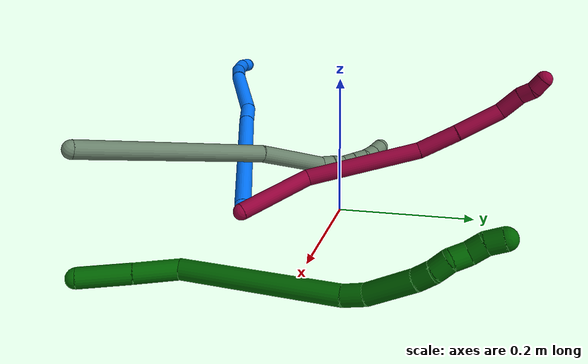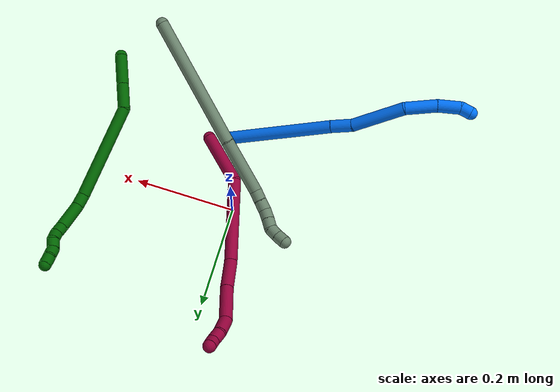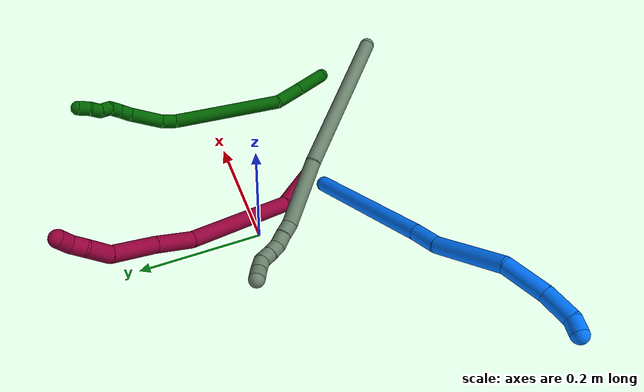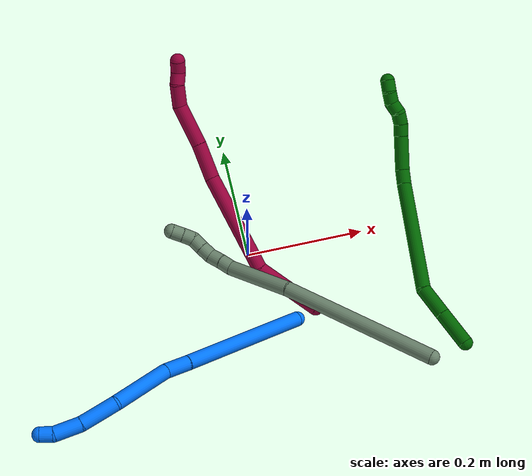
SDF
<sdf version="1.7">
 <world name="default">
  <model name="6">
   <static>0</static>
   <link name="6">
    <collision name="collision-cylinder-e_1_1_4">
     <pose>-0.024391 0.018764 -0.006123 -1.88622 -0.890467 1.1635</pose>
     <geometry><cylinder><radius>0.0125</radius><length>0.062753</length></cylinder></geometry>
     <surface>
      <friction><ode><mu>1.16</mu><mu2>1.16</mu2><slip1>0</slip1><slip2>0</slip2></ode></friction>
      <contact><ode><kp>1e+06</kp><kd>1</kd><max_vel>0</max_vel><min_depth>0.001</min_depth></ode></contact>
     </surface>
    </collision>
    <visual name="visual-cylinder-e_1_1_4">
     <pose>-0.024391 0.018764 -0.006123 -1.88622 -0.890467 1.1635</pose>
     <geometry><cylinder><radius>0.0125</radius><length>0.062753</length></cylinder></geometry>
     <material><ambient>0 0.392157 0.003922 1</ambient></material>
    </visual>
    <collision name="collision-cylinder-e_2_4_5">
     <pose>-0.069706 0.053082 -0.017394 -1.89043 -0.906475 1.18647</pose>
     <geometry><cylinder><radius>0.0125</radius><length>0.053152</length></cylinder></geometry>
     <surface>
      <friction><ode><mu>1.16</mu><mu2>1.16</mu2><slip1>0</slip1><slip2>0</slip2></ode></friction>
      <contact><ode><kp>1e+06</kp><kd>1</kd><max_vel>0</max_vel><min_depth>0.001</min_depth></ode></contact>
     </surface>
    </collision>
    <visual name="visual-cylinder-e_2_4_5">
     <pose>-0.069706 0.053082 -0.017394 -1.89043 -0.906475 1.18647</pose>
     <geometry><cylinder><radius>0.0125</radius><length>0.053152</length></cylinder></geometry>
     <material><ambient>0 0.392157 0.003922 1</ambient></material>
    </visual>
    <collision name="collision-cylinder-e_3_5_6">
     <pose>-0.161735 0.130472 0.004656 -1.15641 -0.811005 0.546313</pose>
     <geometry><cylinder><radius>0.0125</radius><length>0.196154</length></cylinder></geometry>
     <surface>
      <friction><ode><mu>1.16</mu><mu2>1.16</mu2><slip1>0</slip1><slip2>0</slip2></ode></friction>
      <contact><ode><kp>1e+06</kp><kd>1</kd><max_vel>0</max_vel><min_depth>0.001</min_depth></ode></contact>
     </surface>
    </collision>
    <visual name="visual-cylinder-e_3_5_6">
     <pose>-0.161735 0.130472 0.004656 -1.15641 -0.811005 0.546313</pose>
     <geometry><cylinder><radius>0.0125</radius><length>0.196154</length></cylinder></geometry>
     <material><ambient>0 0.392157 0.003922 1</ambient></material>
    </visual>
    <collision name="collision-cylinder-e_4_6_7">
     <pose>-0.244102 0.19819 0.03592 -0.96601 -1.00514 0.561294</pose>
     <geometry><cylinder><radius>0.0125</radius><length>0.026684</length></cylinder></geometry>
     <surface>
      <friction><ode><mu>1.16</mu><mu2>1.16</mu2><slip1>0</slip1><slip2>0</slip2></ode></friction>
      <contact><ode><kp>1e+06</kp><kd>1</kd><max_vel>0</max_vel><min_depth>0.001</min_depth></ode></contact>
     </surface>
    </collision>
    <visual name="visual-cylinder-e_4_6_7">
     <pose>-0.244102 0.19819 0.03592 -0.96601 -1.00514 0.561294</pose>
     <geometry><cylinder><radius>0.0125</radius><length>0.026684</length></cylinder></geometry>
     <material><ambient>0 0.392157 0.003922 1</ambient></material>
    </visual>
    <collision name="collision-cylinder-e_5_7_8">
     <pose>-0.282687 0.20993 0.050551 -0.506247 -1.15449 0.333779</pose>
     <geometry><cylinder><radius>0.0125</radius><length>0.059745</length></cylinder></geometry>
     <surface>
      <friction><ode><mu>1.16</mu><mu2>1.16</mu2><slip1>0</slip1><slip2>0</slip2></ode></friction>
      <contact><ode><kp>1e+06</kp><kd>1</kd><max_vel>0</max_vel><min_depth>0.001</min_depth></ode></contact>
     </surface>
    </collision>
    <visual name="visual-cylinder-e_5_7_8">
     <pose>-0.282687 0.20993 0.050551 -0.506247 -1.15449 0.333779</pose>
     <geometry><cylinder><radius>0.0125</radius><length>0.059745</length></cylinder></geometry>
     <material><ambient>0 0.392157 0.003922 1</ambient></material>
    </visual>
    <collision name="collision-cylinder-e_6_8_9">
     <pose>-0.320125 0.216475 0.06468 -0.190672 -1.22636 0.134375</pose>
     <geometry><cylinder><radius>0.0125</radius><length>0.021498</length></cylinder></geometry>
     <surface>
      <friction><ode><mu>1.16</mu><mu2>1.16</mu2><slip1>0</slip1><slip2>0</slip2></ode></friction>
      <contact><ode><kp>1e+06</kp><kd>1</kd><max_vel>0</max_vel><min_depth>0.001</min_depth></ode></contact>
     </surface>
    </collision>
    <visual name="visual-cylinder-e_6_8_9">
     <pose>-0.320125 0.216475 0.06468 -0.190672 -1.22636 0.134375</pose>
     <geometry><cylinder><radius>0.0125</radius><length>0.021498</length></cylinder></geometry>
     <material><ambient>0 0.392157 0.003922 1</ambient></material>
    </visual>
    <collision name="collision-cylinder-e_7_9_10">
     <pose>-0.340164 0.216906 0.06948 0.204966 -1.44413 -0.180662</pose>
     <geometry><cylinder><radius>0.0125</radius><length>0.020003</length></cylinder></geometry>
     <surface>
      <friction><ode><mu>1.16</mu><mu2>1.16</mu2><slip1>0</slip1><slip2>0</slip2></ode></friction>
      <contact><ode><kp>1e+06</kp><kd>1</kd><max_vel>0</max_vel><min_depth>0.001</min_depth></ode></contact>
     </surface>
    </collision>
    <visual name="visual-cylinder-e_7_9_10">
     <pose>-0.340164 0.216906 0.06948 0.204966 -1.44413 -0.180662</pose>
     <geometry><cylinder><radius>0.0125</radius><length>0.020003</length></cylinder></geometry>
     <material><ambient>0 0.392157 0.003922 1</ambient></material>
    </visual>
    <collision name="collision-cylinder-e_8_10_11">
     <pose>-0.359253 0.220193 0.068851 -2.05543 -1.15883 1.65137</pose>
     <geometry><cylinder><radius>0.0125</radius><length>0.020009</length></cylinder></geometry>
     <surface>
      <friction><ode><mu>1.16</mu><mu2>1.16</mu2><slip1>0</slip1><slip2>0</slip2></ode></friction>
      <contact><ode><kp>1e+06</kp><kd>1</kd><max_vel>0</max_vel><min_depth>0.001</min_depth></ode></contact>
     </surface>
    </collision>
    <visual name="visual-cylinder-e_8_10_11">
     <pose>-0.359253 0.220193 0.068851 -2.05543 -1.15883 1.65137</pose>
     <geometry><cylinder><radius>0.0125</radius><length>0.020009</length></cylinder></geometry>
     <material><ambient>0 0.392157 0.003922 1</ambient></material>
    </visual>
    <collision name="collision-cylinder-e_9_11_12">
     <pose>-0.378286 0.224295 0.068527 -0.346272 -1.40605 0.294282</pose>
     <geometry><cylinder><radius>0.0125</radius><length>0.02</length></cylinder></geometry>
     <surface>
      <friction><ode><mu>1.16</mu><mu2>1.16</mu2><slip1>0</slip1><slip2>0</slip2></ode></friction>
      <contact><ode><kp>1e+06</kp><kd>1</kd><max_vel>0</max_vel><min_depth>0.001</min_depth></ode></contact>
     </surface>
    </collision>
    <visual name="visual-cylinder-e_9_11_12">
     <pose>-0.378286 0.224295 0.068527 -0.346272 -1.40605 0.294282</pose>
     <geometry><cylinder><radius>0.0125</radius><length>0.02</length></cylinder></geometry>
     <material><ambient>0 0.392157 0.003922 1</ambient></material>
    </visual>
    <collision name="collision-cylinder-e_10_12_2">
     <pose>-0.397271 0.228094 0.072581 -0.911831 -1.14822 0.614259</pose>
     <geometry><cylinder><radius>0.0125</radius><length>0.020002</length></cylinder></geometry>
     <surface>
      <friction><ode><mu>1.16</mu><mu2>1.16</mu2><slip1>0</slip1><slip2>0</slip2></ode></friction>
      <contact><ode><kp>1e+06</kp><kd>1</kd><max_vel>0</max_vel><min_depth>0.001</min_depth></ode></contact>
     </surface>
    </collision>
    <visual name="visual-cylinder-e_10_12_2">
     <pose>-0.397271 0.228094 0.072581 -0.911831 -1.14822 0.614259</pose>
     <geometry><cylinder><radius>0.0125</radius><length>0.020002</length></cylinder></geometry>
     <material><ambient>0 0.392157 0.003922 1</ambient></material>
    </visual>
    <collision name="collision-sphere-2">
     <pose>-0.406393 0.231337 0.075093 0 -0 0</pose>
     <geometry><sphere><radius>0.0125</radius></sphere></geometry>
     <surface>
      <friction><ode><mu>1.16</mu><mu2>1.16</mu2><slip1>0</slip1><slip2>0</slip2></ode></friction>
      <contact><ode><kp>1e+06</kp><kd>1</kd><max_vel>0</max_vel><min_depth>0.001</min_depth></ode></contact>
     </surface>
    </collision>
    <visual name="visual-sphere-2">
     <pose>-0.406393 0.231337 0.075093 0 -0 0</pose>
     <geometry><sphere><radius>0.0125</radius></sphere></geometry>
     <material><ambient>0 0.392157 0.003922 1</ambient></material>
    </visual>
    <collision name="collision-sphere-12">
     <pose>-0.38815 0.224851 0.07007 0 -0 0</pose>
     <geometry><sphere><radius>0.0125</radius></sphere></geometry>
     <surface>
      <friction><ode><mu>1.16</mu><mu2>1.16</mu2><slip1>0</slip1><slip2>0</slip2></ode></friction>
      <contact><ode><kp>1e+06</kp><kd>1</kd><max_vel>0</max_vel><min_depth>0.001</min_depth></ode></contact>
     </surface>
    </collision>
    <visual name="visual-sphere-12">
     <pose>-0.38815 0.224851 0.07007 0 -0 0</pose>
     <geometry><sphere><radius>0.0125</radius></sphere></geometry>
     <material><ambient>0 0.392157 0.003922 1</ambient></material>
    </visual>
    <collision name="collision-sphere-11">
     <pose>-0.368421 0.223738 0.066985 0 -0 0</pose>
     <geometry><sphere><radius>0.0125</radius></sphere></geometry>
     <surface>
      <friction><ode><mu>1.16</mu><mu2>1.16</mu2><slip1>0</slip1><slip2>0</slip2></ode></friction>
      <contact><ode><kp>1e+06</kp><kd>1</kd><max_vel>0</max_vel><min_depth>0.001</min_depth></ode></contact>
     </surface>
    </collision>
    <visual name="visual-sphere-11">
     <pose>-0.368421 0.223738 0.066985 0 -0 0</pose>
     <geometry><sphere><radius>0.0125</radius></sphere></geometry>
     <material><ambient>0 0.392157 0.003922 1</ambient></material>
    </visual>
    <collision name="collision-sphere-10">
     <pose>-0.350086 0.216649 0.070717 0 -0 0</pose>
     <geometry><sphere><radius>0.0125</radius></sphere></geometry>
     <surface>
      <friction><ode><mu>1.16</mu><mu2>1.16</mu2><slip1>0</slip1><slip2>0</slip2></ode></friction>
      <contact><ode><kp>1e+06</kp><kd>1</kd><max_vel>0</max_vel><min_depth>0.001</min_depth></ode></contact>
     </surface>
    </collision>
    <visual name="visual-sphere-10">
     <pose>-0.350086 0.216649 0.070717 0 -0 0</pose>
     <geometry><sphere><radius>0.0125</radius></sphere></geometry>
     <material><ambient>0 0.392157 0.003922 1</ambient></material>
    </visual>
    <collision name="collision-sphere-9">
     <pose>-0.330243 0.217163 0.068243 0 -0 0</pose>
     <geometry><sphere><radius>0.0125</radius></sphere></geometry>
     <surface>
      <friction><ode><mu>1.16</mu><mu2>1.16</mu2><slip1>0</slip1><slip2>0</slip2></ode></friction>
      <contact><ode><kp>1e+06</kp><kd>1</kd><max_vel>0</max_vel><min_depth>0.001</min_depth></ode></contact>
     </surface>
    </collision>
    <visual name="visual-sphere-9">
     <pose>-0.330243 0.217163 0.068243 0 -0 0</pose>
     <geometry><sphere><radius>0.0125</radius></sphere></geometry>
     <material><ambient>0 0.392157 0.003922 1</ambient></material>
    </visual>
    <collision name="collision-sphere-4">
     <pose>-0.048782 0.037527 -0.012246 0 -0 0</pose>
     <geometry><sphere><radius>0.0125</radius></sphere></geometry>
     <surface>
      <friction><ode><mu>1.16</mu><mu2>1.16</mu2><slip1>0</slip1><slip2>0</slip2></ode></friction>
      <contact><ode><kp>1e+06</kp><kd>1</kd><max_vel>0</max_vel><min_depth>0.001</min_depth></ode></contact>
     </surface>
    </collision>
    <visual name="visual-sphere-4">
     <pose>-0.048782 0.037527 -0.012246 0 -0 0</pose>
     <geometry><sphere><radius>0.0125</radius></sphere></geometry>
     <material><ambient>0 0.392157 0.003922 1</ambient></material>
    </visual>
    <collision name="collision-sphere-1">
     <geometry><sphere><radius>0.0125</radius></sphere></geometry>
     <surface>
      <friction><ode><mu>1.16</mu><mu2>1.16</mu2><slip1>0</slip1><slip2>0</slip2></ode></friction>
      <contact><ode><kp>1e+06</kp><kd>1</kd><max_vel>0</max_vel><min_depth>0.001</min_depth></ode></contact>
     </surface>
    </collision>
    <visual name="visual-sphere-1">
     <geometry><sphere><radius>0.0125</radius></sphere></geometry>
     <material><ambient>0 0.392157 0.003922 1</ambient></material>
    </visual>
    <collision name="collision-sphere-8">
     <pose>-0.310008 0.215787 0.061116 0 -0 0</pose>
     <geometry><sphere><radius>0.0125</radius></sphere></geometry>
     <surface>
      <friction><ode><mu>1.16</mu><mu2>1.16</mu2><slip1>0</slip1><slip2>0</slip2></ode></friction>
      <contact><ode><kp>1e+06</kp><kd>1</kd><max_vel>0</max_vel><min_depth>0.001</min_depth></ode></contact>
     </surface>
    </collision>
    <visual name="visual-sphere-8">
     <pose>-0.310008 0.215787 0.061116 0 -0 0</pose>
     <geometry><sphere><radius>0.0125</radius></sphere></geometry>
     <material><ambient>0 0.392157 0.003922 1</ambient></material>
    </visual>
    <collision name="collision-sphere-5">
     <pose>-0.090631 0.068637 -0.022543 0 -0 0</pose>
     <geometry><sphere><radius>0.0125</radius></sphere></geometry>
     <surface>
      <friction><ode><mu>1.16</mu><mu2>1.16</mu2><slip1>0</slip1><slip2>0</slip2></ode></friction>
      <contact><ode><kp>1e+06</kp><kd>1</kd><max_vel>0</max_vel><min_depth>0.001</min_depth></ode></contact>
     </surface>
    </collision>
    <visual name="visual-sphere-5">
     <pose>-0.090631 0.068637 -0.022543 0 -0 0</pose>
     <geometry><sphere><radius>0.0125</radius></sphere></geometry>
     <material><ambient>0 0.392157 0.003922 1</ambient></material>
    </visual>
    <collision name="collision-sphere-6">
     <pose>-0.232839 0.192307 0.031855 0 -0 0</pose>
     <geometry><sphere><radius>0.0125</radius></sphere></geometry>
     <surface>
      <friction><ode><mu>1.16</mu><mu2>1.16</mu2><slip1>0</slip1><slip2>0</slip2></ode></friction>
      <contact><ode><kp>1e+06</kp><kd>1</kd><max_vel>0</max_vel><min_depth>0.001</min_depth></ode></contact>
     </surface>
    </collision>
    <visual name="visual-sphere-6">
     <pose>-0.232839 0.192307 0.031855 0 -0 0</pose>
     <geometry><sphere><radius>0.0125</radius></sphere></geometry>
     <material><ambient>0 0.392157 0.003922 1</ambient></material>
    </visual>
    <collision name="collision-sphere-7">
     <pose>-0.255366 0.204072 0.039986 0 -0 0</pose>
     <geometry><sphere><radius>0.0125</radius></sphere></geometry>
     <surface>
      <friction><ode><mu>1.16</mu><mu2>1.16</mu2><slip1>0</slip1><slip2>0</slip2></ode></friction>
      <contact><ode><kp>1e+06</kp><kd>1</kd><max_vel>0</max_vel><min_depth>0.001</min_depth></ode></contact>
     </surface>
    </collision>
    <visual name="visual-sphere-7">
     <pose>-0.255366 0.204072 0.039986 0 -0 0</pose>
     <geometry><sphere><radius>0.0125</radius></sphere></geometry>
     <material><ambient>0 0.392157 0.003922 1</ambient></material>
    </visual>
    <inertial>
     <pose>-0.1935 0.139738 0.021127 0 -0 0</pose>
     <mass>0.5</mass>
     <inertia>
      <ixx>0.000616</ixx>
      <ixy>0</ixy>
      <ixz>0</ixz>
      <iyy>0.000761</iyy>
      <iyz>0</iyz>
      <izz>9.5e-05</izz>
     </inertia>
    </inertial>
   </link>
   <pose>0.318798 -0.238926 0.011494 -1.46492 0.680348 -1.31483</pose>
  </model>
  <model name="8">
   <static>0</static>
   <link name="8">
    <collision name="collision-cylinder-e_1_1_4">
     <pose>-0.039173 0.039935 0.013405 -1.24694 -0.749112 0.551045</pose>
     <geometry><cylinder><radius>0.0125</radius><length>0.115048</length></cylinder></geometry>
     <surface>
      <friction><ode><mu>1.16</mu><mu2>1.16</mu2><slip1>0</slip1><slip2>0</slip2></ode></friction>
      <contact><ode><kp>1e+06</kp><kd>1</kd><max_vel>0</max_vel><min_depth>0.001</min_depth></ode></contact>
     </surface>
    </collision>
    <visual name="visual-cylinder-e_1_1_4">
     <pose>-0.039173 0.039935 0.013405 -1.24694 -0.749112 0.551045</pose>
     <geometry><cylinder><radius>0.0125</radius><length>0.115048</length></cylinder></geometry>
     <material><ambient>0.584314 0 0.227451 1</ambient></material>
    </visual>
    <collision name="collision-cylinder-e_2_4_5">
     <pose>-0.108828 0.141411 0.079789 -0.860026 -0.359094 0.166104</pose>
     <geometry><cylinder><radius>0.0125</radius><length>0.173472</length></cylinder></geometry>
     <surface>
      <friction><ode><mu>1.16</mu><mu2>1.16</mu2><slip1>0</slip1><slip2>0</slip2></ode></friction>
      <contact><ode><kp>1e+06</kp><kd>1</kd><max_vel>0</max_vel><min_depth>0.001</min_depth></ode></contact>
     </surface>
    </collision>
    <visual name="visual-cylinder-e_2_4_5">
     <pose>-0.108828 0.141411 0.079789 -0.860026 -0.359094 0.166104</pose>
     <geometry><cylinder><radius>0.0125</radius><length>0.173472</length></cylinder></geometry>
     <material><ambient>0.584314 0 0.227451 1</ambient></material>
    </visual>
    <collision name="collision-cylinder-e_3_5_6">
     <pose>-0.152857 0.219016 0.155325 -0.618829 -0.45499 0.147745</pose>
     <geometry><cylinder><radius>0.0125</radius><length>0.061658</length></cylinder></geometry>
     <surface>
      <friction><ode><mu>1.16</mu><mu2>1.16</mu2><slip1>0</slip1><slip2>0</slip2></ode></friction>
      <contact><ode><kp>1e+06</kp><kd>1</kd><max_vel>0</max_vel><min_depth>0.001</min_depth></ode></contact>
     </surface>
    </collision>
    <visual name="visual-cylinder-e_3_5_6">
     <pose>-0.152857 0.219016 0.155325 -0.618829 -0.45499 0.147745</pose>
     <geometry><cylinder><radius>0.0125</radius><length>0.061658</length></cylinder></geometry>
     <material><ambient>0.584314 0 0.227451 1</ambient></material>
    </visual>
    <collision name="collision-cylinder-e_4_6_7">
     <pose>-0.184556 0.254581 0.201838 -0.683246 -0.531245 0.192863</pose>
     <geometry><cylinder><radius>0.0125</radius><length>0.071656</length></cylinder></geometry>
     <surface>
      <friction><ode><mu>1.16</mu><mu2>1.16</mu2><slip1>0</slip1><slip2>0</slip2></ode></friction>
      <contact><ode><kp>1e+06</kp><kd>1</kd><max_vel>0</max_vel><min_depth>0.001</min_depth></ode></contact>
     </surface>
    </collision>
    <visual name="visual-cylinder-e_4_6_7">
     <pose>-0.184556 0.254581 0.201838 -0.683246 -0.531245 0.192863</pose>
     <geometry><cylinder><radius>0.0125</radius><length>0.071656</length></cylinder></geometry>
     <material><ambient>0.584314 0 0.227451 1</ambient></material>
    </visual>
    <collision name="collision-cylinder-e_5_7_8">
     <pose>-0.210996 0.277533 0.241866 -0.211523 -0.467065 0.050493</pose>
     <geometry><cylinder><radius>0.0125</radius><length>0.03682</length></cylinder></geometry>
     <surface>
      <friction><ode><mu>1.16</mu><mu2>1.16</mu2><slip1>0</slip1><slip2>0</slip2></ode></friction>
      <contact><ode><kp>1e+06</kp><kd>1</kd><max_vel>0</max_vel><min_depth>0.001</min_depth></ode></contact>
     </surface>
    </collision>
    <visual name="visual-cylinder-e_5_7_8">
     <pose>-0.210996 0.277533 0.241866 -0.211523 -0.467065 0.050493</pose>
     <geometry><cylinder><radius>0.0125</radius><length>0.03682</length></cylinder></geometry>
     <material><ambient>0.584314 0 0.227451 1</ambient></material>
    </visual>
    <collision name="collision-cylinder-e_6_8_9">
     <pose>-0.22079 0.283798 0.268088 -0.270364 -0.141908 0.019333</pose>
     <geometry><cylinder><radius>0.0125</radius><length>0.02128</length></cylinder></geometry>
     <surface>
      <friction><ode><mu>1.16</mu><mu2>1.16</mu2><slip1>0</slip1><slip2>0</slip2></ode></friction>
      <contact><ode><kp>1e+06</kp><kd>1</kd><max_vel>0</max_vel><min_depth>0.001</min_depth></ode></contact>
     </surface>
    </collision>
    <visual name="visual-cylinder-e_6_8_9">
     <pose>-0.22079 0.283798 0.268088 -0.270364 -0.141908 0.019333</pose>
     <geometry><cylinder><radius>0.0125</radius><length>0.02128</length></cylinder></geometry>
     <material><ambient>0.584314 0 0.227451 1</ambient></material>
    </visual>
    <collision name="collision-cylinder-e_7_9_2">
     <pose>-0.227214 0.286962 0.286976 -0.040126 -0.512482 0.010514</pose>
     <geometry><cylinder><radius>0.0125</radius><length>0.020065</length></cylinder></geometry>
     <surface>
      <friction><ode><mu>1.16</mu><mu2>1.16</mu2><slip1>0</slip1><slip2>0</slip2></ode></friction>
      <contact><ode><kp>1e+06</kp><kd>1</kd><max_vel>0</max_vel><min_depth>0.001</min_depth></ode></contact>
     </surface>
    </collision>
    <visual name="visual-cylinder-e_7_9_2">
     <pose>-0.227214 0.286962 0.286976 -0.040126 -0.512482 0.010514</pose>
     <geometry><cylinder><radius>0.0125</radius><length>0.020065</length></cylinder></geometry>
     <material><ambient>0.584314 0 0.227451 1</ambient></material>
    </visual>
    <collision name="collision-sphere-2">
     <pose>-0.232134 0.287312 0.295712 0 -0 0</pose>
     <geometry><sphere><radius>0.0125</radius></sphere></geometry>
     <surface>
      <friction><ode><mu>1.16</mu><mu2>1.16</mu2><slip1>0</slip1><slip2>0</slip2></ode></friction>
      <contact><ode><kp>1e+06</kp><kd>1</kd><max_vel>0</max_vel><min_depth>0.001</min_depth></ode></contact>
     </surface>
    </collision>
    <visual name="visual-sphere-2">
     <pose>-0.232134 0.287312 0.295712 0 -0 0</pose>
     <geometry><sphere><radius>0.0125</radius></sphere></geometry>
     <material><ambient>0.584314 0 0.227451 1</ambient></material>
    </visual>
    <collision name="collision-sphere-9">
     <pose>-0.222295 0.286611 0.278239 0 -0 0</pose>
     <geometry><sphere><radius>0.0125</radius></sphere></geometry>
     <surface>
      <friction><ode><mu>1.16</mu><mu2>1.16</mu2><slip1>0</slip1><slip2>0</slip2></ode></friction>
      <contact><ode><kp>1e+06</kp><kd>1</kd><max_vel>0</max_vel><min_depth>0.001</min_depth></ode></contact>
     </surface>
    </collision>
    <visual name="visual-sphere-9">
     <pose>-0.222295 0.286611 0.278239 0 -0 0</pose>
     <geometry><sphere><radius>0.0125</radius></sphere></geometry>
     <material><ambient>0.584314 0 0.227451 1</ambient></material>
    </visual>
    <collision name="collision-sphere-4">
     <pose>-0.078347 0.07987 0.02681 0 -0 0</pose>
     <geometry><sphere><radius>0.0125</radius></sphere></geometry>
     <surface>
      <friction><ode><mu>1.16</mu><mu2>1.16</mu2><slip1>0</slip1><slip2>0</slip2></ode></friction>
      <contact><ode><kp>1e+06</kp><kd>1</kd><max_vel>0</max_vel><min_depth>0.001</min_depth></ode></contact>
     </surface>
    </collision>
    <visual name="visual-sphere-4">
     <pose>-0.078347 0.07987 0.02681 0 -0 0</pose>
     <geometry><sphere><radius>0.0125</radius></sphere></geometry>
     <material><ambient>0.584314 0 0.227451 1</ambient></material>
    </visual>
    <collision name="collision-sphere-1">
     <geometry><sphere><radius>0.0125</radius></sphere></geometry>
     <surface>
      <friction><ode><mu>1.16</mu><mu2>1.16</mu2><slip1>0</slip1><slip2>0</slip2></ode></friction>
      <contact><ode><kp>1e+06</kp><kd>1</kd><max_vel>0</max_vel><min_depth>0.001</min_depth></ode></contact>
     </surface>
    </collision>
    <visual name="visual-sphere-1">
     <geometry><sphere><radius>0.0125</radius></sphere></geometry>
     <material><ambient>0.584314 0 0.227451 1</ambient></material>
    </visual>
    <collision name="collision-sphere-8">
     <pose>-0.219285 0.280985 0.257938 0 -0 0</pose>
     <geometry><sphere><radius>0.0125</radius></sphere></geometry>
     <surface>
      <friction><ode><mu>1.16</mu><mu2>1.16</mu2><slip1>0</slip1><slip2>0</slip2></ode></friction>
      <contact><ode><kp>1e+06</kp><kd>1</kd><max_vel>0</max_vel><min_depth>0.001</min_depth></ode></contact>
     </surface>
    </collision>
    <visual name="visual-sphere-8">
     <pose>-0.219285 0.280985 0.257938 0 -0 0</pose>
     <geometry><sphere><radius>0.0125</radius></sphere></geometry>
     <material><ambient>0.584314 0 0.227451 1</ambient></material>
    </visual>
    <collision name="collision-sphere-5">
     <pose>-0.139309 0.202952 0.132768 0 -0 0</pose>
     <geometry><sphere><radius>0.0125</radius></sphere></geometry>
     <surface>
      <friction><ode><mu>1.16</mu><mu2>1.16</mu2><slip1>0</slip1><slip2>0</slip2></ode></friction>
      <contact><ode><kp>1e+06</kp><kd>1</kd><max_vel>0</max_vel><min_depth>0.001</min_depth></ode></contact>
     </surface>
    </collision>
    <visual name="visual-sphere-5">
     <pose>-0.139309 0.202952 0.132768 0 -0 0</pose>
     <geometry><sphere><radius>0.0125</radius></sphere></geometry>
     <material><ambient>0.584314 0 0.227451 1</ambient></material>
    </visual>
    <collision name="collision-sphere-6">
     <pose>-0.166405 0.23508 0.177882 0 -0 0</pose>
     <geometry><sphere><radius>0.0125</radius></sphere></geometry>
     <surface>
      <friction><ode><mu>1.16</mu><mu2>1.16</mu2><slip1>0</slip1><slip2>0</slip2></ode></friction>
      <contact><ode><kp>1e+06</kp><kd>1</kd><max_vel>0</max_vel><min_depth>0.001</min_depth></ode></contact>
     </surface>
    </collision>
    <visual name="visual-sphere-6">
     <pose>-0.166405 0.23508 0.177882 0 -0 0</pose>
     <geometry><sphere><radius>0.0125</radius></sphere></geometry>
     <material><ambient>0.584314 0 0.227451 1</ambient></material>
    </visual>
    <collision name="collision-sphere-7">
     <pose>-0.202706 0.274082 0.225794 0 -0 0</pose>
     <geometry><sphere><radius>0.0125</radius></sphere></geometry>
     <surface>
      <friction><ode><mu>1.16</mu><mu2>1.16</mu2><slip1>0</slip1><slip2>0</slip2></ode></friction>
      <contact><ode><kp>1e+06</kp><kd>1</kd><max_vel>0</max_vel><min_depth>0.001</min_depth></ode></contact>
     </surface>
    </collision>
    <visual name="visual-sphere-7">
     <pose>-0.202706 0.274082 0.225794 0 -0 0</pose>
     <geometry><sphere><radius>0.0125</radius></sphere></geometry>
     <material><ambient>0.584314 0 0.227451 1</ambient></material>
    </visual>
    <inertial>
     <pose>-0.126123 0.165775 0.119584 0 -0 0</pose>
     <mass>0.5</mass>
     <inertia>
      <ixx>0.000655</ixx>
      <ixy>0</ixy>
      <ixz>0</ixz>
      <iyy>0.000588</iyy>
      <iyz>0</iyz>
      <izz>-0.000138</izz>
     </inertia>
    </inertial>
   </link>
   <pose>0.08893 -0.12521 0.017821 -0.742769 0.801514 -0.004313</pose>
  </model>
  <model name="14">
   <static>0</static>
   <link name="14">
    <collision name="collision-cylinder-e_1_1_4">
     <pose>0.069499 -0.084891 0.016946 1.37377 0.67647 0.561702</pose>
     <geometry><cylinder><radius>0.0125</radius><length>0.222024</length></cylinder></geometry>
     <surface>
      <friction><ode><mu>1.16</mu><mu2>1.16</mu2><slip1>0</slip1><slip2>0</slip2></ode></friction>
      <contact><ode><kp>1e+06</kp><kd>1</kd><max_vel>0</max_vel><min_depth>0.001</min_depth></ode></contact>
     </surface>
    </collision>
    <visual name="visual-cylinder-e_1_1_4">
     <pose>0.069499 -0.084891 0.016946 1.37377 0.67647 0.561702</pose>
     <geometry><cylinder><radius>0.0125</radius><length>0.222024</length></cylinder></geometry>
     <material><ambient>0 0.462745 1 1</ambient></material>
    </visual>
    <collision name="collision-cylinder-e_2_4_5">
     <pose>0.152312 -0.186009 0.035956 1.44425 0.683234 0.607021</pose>
     <geometry><cylinder><radius>0.0125</radius><length>0.042183</length></cylinder></geometry>
     <surface>
      <friction><ode><mu>1.16</mu><mu2>1.16</mu2><slip1>0</slip1><slip2>0</slip2></ode></friction>
      <contact><ode><kp>1e+06</kp><kd>1</kd><max_vel>0</max_vel><min_depth>0.001</min_depth></ode></contact>
     </surface>
    </collision>
    <visual name="visual-cylinder-e_2_4_5">
     <pose>0.152312 -0.186009 0.035956 1.44425 0.683234 0.607021</pose>
     <geometry><cylinder><radius>0.0125</radius><length>0.042183</length></cylinder></geometry>
     <material><ambient>0 0.462745 1 1</ambient></material>
    </visual>
    <collision name="collision-cylinder-e_3_5_6">
     <pose>0.201933 -0.238267 0.054895 1.13281 0.73966 0.4834</pose>
     <geometry><cylinder><radius>0.0125</radius><length>0.107725</length></cylinder></geometry>
     <surface>
      <friction><ode><mu>1.16</mu><mu2>1.16</mu2><slip1>0</slip1><slip2>0</slip2></ode></friction>
      <contact><ode><kp>1e+06</kp><kd>1</kd><max_vel>0</max_vel><min_depth>0.001</min_depth></ode></contact>
     </surface>
    </collision>
    <visual name="visual-cylinder-e_3_5_6">
     <pose>0.201933 -0.238267 0.054895 1.13281 0.73966 0.4834</pose>
     <geometry><cylinder><radius>0.0125</radius><length>0.107725</length></cylinder></geometry>
     <material><ambient>0 0.462745 1 1</ambient></material>
    </visual>
    <collision name="collision-cylinder-e_4_6_7">
     <pose>0.263427 -0.292664 0.071214 1.60112 0.940617 0.965334</pose>
     <geometry><cylinder><radius>0.0125</radius><length>0.062354</length></cylinder></geometry>
     <surface>
      <friction><ode><mu>1.16</mu><mu2>1.16</mu2><slip1>0</slip1><slip2>0</slip2></ode></friction>
      <contact><ode><kp>1e+06</kp><kd>1</kd><max_vel>0</max_vel><min_depth>0.001</min_depth></ode></contact>
     </surface>
    </collision>
    <visual name="visual-cylinder-e_4_6_7">
     <pose>0.263427 -0.292664 0.071214 1.60112 0.940617 0.965334</pose>
     <geometry><cylinder><radius>0.0125</radius><length>0.062354</length></cylinder></geometry>
     <material><ambient>0 0.462745 1 1</ambient></material>
    </visual>
    <collision name="collision-cylinder-e_5_7_8">
     <pose>0.304397 -0.326487 0.067447 1.77548 0.785151 0.941414</pose>
     <geometry><cylinder><radius>0.0125</radius><length>0.044647</length></cylinder></geometry>
     <surface>
      <friction><ode><mu>1.16</mu><mu2>1.16</mu2><slip1>0</slip1><slip2>0</slip2></ode></friction>
      <contact><ode><kp>1e+06</kp><kd>1</kd><max_vel>0</max_vel><min_depth>0.001</min_depth></ode></contact>
     </surface>
    </collision>
    <visual name="visual-cylinder-e_5_7_8">
     <pose>0.304397 -0.326487 0.067447 1.77548 0.785151 0.941414</pose>
     <geometry><cylinder><radius>0.0125</radius><length>0.044647</length></cylinder></geometry>
     <material><ambient>0 0.462745 1 1</ambient></material>
    </visual>
    <collision name="collision-cylinder-e_6_8_2">
     <pose>0.32518 -0.349903 0.059482 2.1095 0.494809 0.837727</pose>
     <geometry><cylinder><radius>0.0125</radius><length>0.021066</length></cylinder></geometry>
     <surface>
      <friction><ode><mu>1.16</mu><mu2>1.16</mu2><slip1>0</slip1><slip2>0</slip2></ode></friction>
      <contact><ode><kp>1e+06</kp><kd>1</kd><max_vel>0</max_vel><min_depth>0.001</min_depth></ode></contact>
     </surface>
    </collision>
    <visual name="visual-cylinder-e_6_8_2">
     <pose>0.32518 -0.349903 0.059482 2.1095 0.494809 0.837727</pose>
     <geometry><cylinder><radius>0.0125</radius><length>0.021066</length></cylinder></geometry>
     <material><ambient>0 0.462745 1 1</ambient></material>
    </visual>
    <collision name="collision-sphere-2">
     <pose>0.330181 -0.35786 0.054727 0 -0 0</pose>
     <geometry><sphere><radius>0.0125</radius></sphere></geometry>
     <surface>
      <friction><ode><mu>1.16</mu><mu2>1.16</mu2><slip1>0</slip1><slip2>0</slip2></ode></friction>
      <contact><ode><kp>1e+06</kp><kd>1</kd><max_vel>0</max_vel><min_depth>0.001</min_depth></ode></contact>
     </surface>
    </collision>
    <visual name="visual-sphere-2">
     <pose>0.330181 -0.35786 0.054727 0 -0 0</pose>
     <geometry><sphere><radius>0.0125</radius></sphere></geometry>
     <material><ambient>0 0.462745 1 1</ambient></material>
    </visual>
    <collision name="collision-sphere-4">
     <pose>0.138997 -0.169782 0.033892 0 -0 0</pose>
     <geometry><sphere><radius>0.0125</radius></sphere></geometry>
     <surface>
      <friction><ode><mu>1.16</mu><mu2>1.16</mu2><slip1>0</slip1><slip2>0</slip2></ode></friction>
      <contact><ode><kp>1e+06</kp><kd>1</kd><max_vel>0</max_vel><min_depth>0.001</min_depth></ode></contact>
     </surface>
    </collision>
    <visual name="visual-sphere-4">
     <pose>0.138997 -0.169782 0.033892 0 -0 0</pose>
     <geometry><sphere><radius>0.0125</radius></sphere></geometry>
     <material><ambient>0 0.462745 1 1</ambient></material>
    </visual>
    <collision name="collision-sphere-1">
     <geometry><sphere><radius>0.0125</radius></sphere></geometry>
     <surface>
      <friction><ode><mu>1.16</mu><mu2>1.16</mu2><slip1>0</slip1><slip2>0</slip2></ode></friction>
      <contact><ode><kp>1e+06</kp><kd>1</kd><max_vel>0</max_vel><min_depth>0.001</min_depth></ode></contact>
     </surface>
    </collision>
    <visual name="visual-sphere-1">
     <geometry><sphere><radius>0.0125</radius></sphere></geometry>
     <material><ambient>0 0.462745 1 1</ambient></material>
    </visual>
    <collision name="collision-sphere-8">
     <pose>0.320178 -0.341947 0.064238 0 -0 0</pose>
     <geometry><sphere><radius>0.0125</radius></sphere></geometry>
     <surface>
      <friction><ode><mu>1.16</mu><mu2>1.16</mu2><slip1>0</slip1><slip2>0</slip2></ode></friction>
      <contact><ode><kp>1e+06</kp><kd>1</kd><max_vel>0</max_vel><min_depth>0.001</min_depth></ode></contact>
     </surface>
    </collision>
    <visual name="visual-sphere-8">
     <pose>0.320178 -0.341947 0.064238 0 -0 0</pose>
     <geometry><sphere><radius>0.0125</radius></sphere></geometry>
     <material><ambient>0 0.462745 1 1</ambient></material>
    </visual>
    <collision name="collision-sphere-5">
     <pose>0.165627 -0.202235 0.03802 0 -0 0</pose>
     <geometry><sphere><radius>0.0125</radius></sphere></geometry>
     <surface>
      <friction><ode><mu>1.16</mu><mu2>1.16</mu2><slip1>0</slip1><slip2>0</slip2></ode></friction>
      <contact><ode><kp>1e+06</kp><kd>1</kd><max_vel>0</max_vel><min_depth>0.001</min_depth></ode></contact>
     </surface>
    </collision>
    <visual name="visual-sphere-5">
     <pose>0.165627 -0.202235 0.03802 0 -0 0</pose>
     <geometry><sphere><radius>0.0125</radius></sphere></geometry>
     <material><ambient>0 0.462745 1 1</ambient></material>
    </visual>
    <collision name="collision-sphere-6">
     <pose>0.238238 -0.2743 0.07177 0 -0 0</pose>
     <geometry><sphere><radius>0.0125</radius></sphere></geometry>
     <surface>
      <friction><ode><mu>1.16</mu><mu2>1.16</mu2><slip1>0</slip1><slip2>0</slip2></ode></friction>
      <contact><ode><kp>1e+06</kp><kd>1</kd><max_vel>0</max_vel><min_depth>0.001</min_depth></ode></contact>
     </surface>
    </collision>
    <visual name="visual-sphere-6">
     <pose>0.238238 -0.2743 0.07177 0 -0 0</pose>
     <geometry><sphere><radius>0.0125</radius></sphere></geometry>
     <material><ambient>0 0.462745 1 1</ambient></material>
    </visual>
    <collision name="collision-sphere-7">
     <pose>0.288615 -0.311028 0.070657 0 -0 0</pose>
     <geometry><sphere><radius>0.0125</radius></sphere></geometry>
     <surface>
      <friction><ode><mu>1.16</mu><mu2>1.16</mu2><slip1>0</slip1><slip2>0</slip2></ode></friction>
      <contact><ode><kp>1e+06</kp><kd>1</kd><max_vel>0</max_vel><min_depth>0.001</min_depth></ode></contact>
     </surface>
    </collision>
    <visual name="visual-sphere-7">
     <pose>0.288615 -0.311028 0.070657 0 -0 0</pose>
     <geometry><sphere><radius>0.0125</radius></sphere></geometry>
     <material><ambient>0 0.462745 1 1</ambient></material>
    </visual>
    <inertial>
     <pose>0.16095 -0.185117 0.039795 0 -0 0</pose>
     <mass>0.5</mass>
     <inertia>
      <ixx>0.001162</ixx>
      <ixy>0</ixy>
      <ixz>0</ixz>
      <iyy>0.00096</iyy>
      <iyz>0</iyz>
      <izz>0.000128</izz>
     </inertia>
    </inertial>
   </link>
   <pose>0.054355 -0.136072 0.014685 -0.726444 0.344571 -2.30342</pose>
  </model>
  <model name="17">
   <static>0</static>
   <link name="17">
    <collision name="collision-cylinder-e_1_1_4">
     <pose>-0.11642 0.059961 0.02382 -1.19265 -1.06474 0.76077</pose>
     <geometry><cylinder><radius>0.0125</radius><length>0.266206</length></cylinder></geometry>
     <surface>
      <friction><ode><mu>1.16</mu><mu2>1.16</mu2><slip1>0</slip1><slip2>0</slip2></ode></friction>
      <contact><ode><kp>1e+06</kp><kd>1</kd><max_vel>0</max_vel><min_depth>0.001</min_depth></ode></contact>
     </surface>
    </collision>
    <visual name="visual-cylinder-e_1_1_4">
     <pose>-0.11642 0.059961 0.02382 -1.19265 -1.06474 0.76077</pose>
     <geometry><cylinder><radius>0.0125</radius><length>0.266206</length></cylinder></geometry>
     <material><ambient>0.415686 0.509804 0.423529 1</ambient></material>
    </visual>
    <collision name="collision-cylinder-e_2_4_5">
     <pose>-0.280993 0.147736 0.049781 -1.49399 -1.04571 0.980494</pose>
     <geometry><cylinder><radius>0.0125</radius><length>0.111299</length></cylinder></geometry>
     <surface>
      <friction><ode><mu>1.16</mu><mu2>1.16</mu2><slip1>0</slip1><slip2>0</slip2></ode></friction>
      <contact><ode><kp>1e+06</kp><kd>1</kd><max_vel>0</max_vel><min_depth>0.001</min_depth></ode></contact>
     </surface>
    </collision>
    <visual name="visual-cylinder-e_2_4_5">
     <pose>-0.280993 0.147736 0.049781 -1.49399 -1.04571 0.980494</pose>
     <geometry><cylinder><radius>0.0125</radius><length>0.111299</length></cylinder></geometry>
     <material><ambient>0.415686 0.509804 0.423529 1</ambient></material>
    </visual>
    <collision name="collision-cylinder-e_3_5_6">
     <pose>-0.337867 0.180329 0.055142 -0.977895 -0.986899 0.557394</pose>
     <geometry><cylinder><radius>0.0125</radius><length>0.020905</length></cylinder></geometry>
     <surface>
      <friction><ode><mu>1.16</mu><mu2>1.16</mu2><slip1>0</slip1><slip2>0</slip2></ode></friction>
      <contact><ode><kp>1e+06</kp><kd>1</kd><max_vel>0</max_vel><min_depth>0.001</min_depth></ode></contact>
     </surface>
    </collision>
    <visual name="visual-cylinder-e_3_5_6">
     <pose>-0.337867 0.180329 0.055142 -0.977895 -0.986899 0.557394</pose>
     <geometry><cylinder><radius>0.0125</radius><length>0.020905</length></cylinder></geometry>
     <material><ambient>0.415686 0.509804 0.423529 1</ambient></material>
    </visual>
    <collision name="collision-cylinder-e_4_6_7">
     <pose>-0.355667 0.190264 0.060648 -1.15332 -1.01491 0.694015</pose>
     <geometry><cylinder><radius>0.0125</radius><length>0.021378</length></cylinder></geometry>
     <surface>
      <friction><ode><mu>1.16</mu><mu2>1.16</mu2><slip1>0</slip1><slip2>0</slip2></ode></friction>
      <contact><ode><kp>1e+06</kp><kd>1</kd><max_vel>0</max_vel><min_depth>0.001</min_depth></ode></contact>
     </surface>
    </collision>
    <visual name="visual-cylinder-e_4_6_7">
     <pose>-0.355667 0.190264 0.060648 -1.15332 -1.01491 0.694015</pose>
     <geometry><cylinder><radius>0.0125</radius><length>0.021378</length></cylinder></geometry>
     <material><ambient>0.415686 0.509804 0.423529 1</ambient></material>
    </visual>
    <collision name="collision-cylinder-e_5_7_8">
     <pose>-0.372277 0.199277 0.068398 -0.614853 -0.84467 0.283434</pose>
     <geometry><cylinder><radius>0.0125</radius><length>0.020142</length></cylinder></geometry>
     <surface>
      <friction><ode><mu>1.16</mu><mu2>1.16</mu2><slip1>0</slip1><slip2>0</slip2></ode></friction>
      <contact><ode><kp>1e+06</kp><kd>1</kd><max_vel>0</max_vel><min_depth>0.001</min_depth></ode></contact>
     </surface>
    </collision>
    <visual name="visual-cylinder-e_5_7_8">
     <pose>-0.372277 0.199277 0.068398 -0.614853 -0.84467 0.283434</pose>
     <geometry><cylinder><radius>0.0125</radius><length>0.020142</length></cylinder></geometry>
     <material><ambient>0.415686 0.509804 0.423529 1</ambient></material>
    </visual>
    <collision name="collision-cylinder-e_6_8_9">
     <pose>-0.386881 0.20721 0.079672 -0.611597 -0.783589 0.259402</pose>
     <geometry><cylinder><radius>0.0125</radius><length>0.020042</length></cylinder></geometry>
     <surface>
      <friction><ode><mu>1.16</mu><mu2>1.16</mu2><slip1>0</slip1><slip2>0</slip2></ode></friction>
      <contact><ode><kp>1e+06</kp><kd>1</kd><max_vel>0</max_vel><min_depth>0.001</min_depth></ode></contact>
     </surface>
    </collision>
    <visual name="visual-cylinder-e_6_8_9">
     <pose>-0.386881 0.20721 0.079672 -0.611597 -0.783589 0.259402</pose>
     <geometry><cylinder><radius>0.0125</radius><length>0.020042</length></cylinder></geometry>
     <material><ambient>0.415686 0.509804 0.423529 1</ambient></material>
    </visual>
    <collision name="collision-cylinder-e_7_9_10">
     <pose>-0.403233 0.212113 0.089135 -0.222678 -1.18732 0.150617</pose>
     <geometry><cylinder><radius>0.0125</radius><length>0.020011</length></cylinder></geometry>
     <surface>
      <friction><ode><mu>1.16</mu><mu2>1.16</mu2><slip1>0</slip1><slip2>0</slip2></ode></friction>
      <contact><ode><kp>1e+06</kp><kd>1</kd><max_vel>0</max_vel><min_depth>0.001</min_depth></ode></contact>
     </surface>
    </collision>
    <visual name="visual-cylinder-e_7_9_10">
     <pose>-0.403233 0.212113 0.089135 -0.222678 -1.18732 0.150617</pose>
     <geometry><cylinder><radius>0.0125</radius><length>0.020011</length></cylinder></geometry>
     <material><ambient>0.415686 0.509804 0.423529 1</ambient></material>
    </visual>
    <collision name="collision-cylinder-e_8_10_2">
     <pose>-0.421707 0.212495 0.096711 0.112808 -1.16507 -0.074362</pose>
     <geometry><cylinder><radius>0.0125</radius><length>0.020017</length></cylinder></geometry>
     <surface>
      <friction><ode><mu>1.16</mu><mu2>1.16</mu2><slip1>0</slip1><slip2>0</slip2></ode></friction>
      <contact><ode><kp>1e+06</kp><kd>1</kd><max_vel>0</max_vel><min_depth>0.001</min_depth></ode></contact>
     </surface>
    </collision>
    <visual name="visual-cylinder-e_8_10_2">
     <pose>-0.421707 0.212495 0.096711 0.112808 -1.16507 -0.074362</pose>
     <geometry><cylinder><radius>0.0125</radius><length>0.020017</length></cylinder></geometry>
     <material><ambient>0.415686 0.509804 0.423529 1</ambient></material>
    </visual>
    <collision name="collision-sphere-2">
     <pose>-0.430903 0.21205 0.100636 0 -0 0</pose>
     <geometry><sphere><radius>0.0125</radius></sphere></geometry>
     <surface>
      <friction><ode><mu>1.16</mu><mu2>1.16</mu2><slip1>0</slip1><slip2>0</slip2></ode></friction>
      <contact><ode><kp>1e+06</kp><kd>1</kd><max_vel>0</max_vel><min_depth>0.001</min_depth></ode></contact>
     </surface>
    </collision>
    <visual name="visual-sphere-2">
     <pose>-0.430903 0.21205 0.100636 0 -0 0</pose>
     <geometry><sphere><radius>0.0125</radius></sphere></geometry>
     <material><ambient>0.415686 0.509804 0.423529 1</ambient></material>
    </visual>
    <collision name="collision-sphere-10">
     <pose>-0.412511 0.21294 0.092786 0 -0 0</pose>
     <geometry><sphere><radius>0.0125</radius></sphere></geometry>
     <surface>
      <friction><ode><mu>1.16</mu><mu2>1.16</mu2><slip1>0</slip1><slip2>0</slip2></ode></friction>
      <contact><ode><kp>1e+06</kp><kd>1</kd><max_vel>0</max_vel><min_depth>0.001</min_depth></ode></contact>
     </surface>
    </collision>
    <visual name="visual-sphere-10">
     <pose>-0.412511 0.21294 0.092786 0 -0 0</pose>
     <geometry><sphere><radius>0.0125</radius></sphere></geometry>
     <material><ambient>0.415686 0.509804 0.423529 1</ambient></material>
    </visual>
    <collision name="collision-sphere-9">
     <pose>-0.393954 0.211286 0.085484 0 -0 0</pose>
     <geometry><sphere><radius>0.0125</radius></sphere></geometry>
     <surface>
      <friction><ode><mu>1.16</mu><mu2>1.16</mu2><slip1>0</slip1><slip2>0</slip2></ode></friction>
      <contact><ode><kp>1e+06</kp><kd>1</kd><max_vel>0</max_vel><min_depth>0.001</min_depth></ode></contact>
     </surface>
    </collision>
    <visual name="visual-sphere-9">
     <pose>-0.393954 0.211286 0.085484 0 -0 0</pose>
     <geometry><sphere><radius>0.0125</radius></sphere></geometry>
     <material><ambient>0.415686 0.509804 0.423529 1</ambient></material>
    </visual>
    <collision name="collision-sphere-4">
     <pose>-0.232841 0.119921 0.047641 0 -0 0</pose>
     <geometry><sphere><radius>0.0125</radius></sphere></geometry>
     <surface>
      <friction><ode><mu>1.16</mu><mu2>1.16</mu2><slip1>0</slip1><slip2>0</slip2></ode></friction>
      <contact><ode><kp>1e+06</kp><kd>1</kd><max_vel>0</max_vel><min_depth>0.001</min_depth></ode></contact>
     </surface>
    </collision>
    <visual name="visual-sphere-4">
     <pose>-0.232841 0.119921 0.047641 0 -0 0</pose>
     <geometry><sphere><radius>0.0125</radius></sphere></geometry>
     <material><ambient>0.415686 0.509804 0.423529 1</ambient></material>
    </visual>
    <collision name="collision-sphere-1">
     <geometry><sphere><radius>0.0125</radius></sphere></geometry>
     <surface>
      <friction><ode><mu>1.16</mu><mu2>1.16</mu2><slip1>0</slip1><slip2>0</slip2></ode></friction>
      <contact><ode><kp>1e+06</kp><kd>1</kd><max_vel>0</max_vel><min_depth>0.001</min_depth></ode></contact>
     </surface>
    </collision>
    <visual name="visual-sphere-1">
     <geometry><sphere><radius>0.0125</radius></sphere></geometry>
     <material><ambient>0.415686 0.509804 0.423529 1</ambient></material>
    </visual>
    <collision name="collision-sphere-8">
     <pose>-0.379808 0.203135 0.07386 0 -0 0</pose>
     <geometry><sphere><radius>0.0125</radius></sphere></geometry>
     <surface>
      <friction><ode><mu>1.16</mu><mu2>1.16</mu2><slip1>0</slip1><slip2>0</slip2></ode></friction>
      <contact><ode><kp>1e+06</kp><kd>1</kd><max_vel>0</max_vel><min_depth>0.001</min_depth></ode></contact>
     </surface>
    </collision>
    <visual name="visual-sphere-8">
     <pose>-0.379808 0.203135 0.07386 0 -0 0</pose>
     <geometry><sphere><radius>0.0125</radius></sphere></geometry>
     <material><ambient>0.415686 0.509804 0.423529 1</ambient></material>
    </visual>
    <collision name="collision-sphere-5">
     <pose>-0.329146 0.17555 0.051922 0 -0 0</pose>
     <geometry><sphere><radius>0.0125</radius></sphere></geometry>
     <surface>
      <friction><ode><mu>1.16</mu><mu2>1.16</mu2><slip1>0</slip1><slip2>0</slip2></ode></friction>
      <contact><ode><kp>1e+06</kp><kd>1</kd><max_vel>0</max_vel><min_depth>0.001</min_depth></ode></contact>
     </surface>
    </collision>
    <visual name="visual-sphere-5">
     <pose>-0.329146 0.17555 0.051922 0 -0 0</pose>
     <geometry><sphere><radius>0.0125</radius></sphere></geometry>
     <material><ambient>0.415686 0.509804 0.423529 1</ambient></material>
    </visual>
    <collision name="collision-sphere-6">
     <pose>-0.346587 0.185108 0.058361 0 -0 0</pose>
     <geometry><sphere><radius>0.0125</radius></sphere></geometry>
     <surface>
      <friction><ode><mu>1.16</mu><mu2>1.16</mu2><slip1>0</slip1><slip2>0</slip2></ode></friction>
      <contact><ode><kp>1e+06</kp><kd>1</kd><max_vel>0</max_vel><min_depth>0.001</min_depth></ode></contact>
     </surface>
    </collision>
    <visual name="visual-sphere-6">
     <pose>-0.346587 0.185108 0.058361 0 -0 0</pose>
     <geometry><sphere><radius>0.0125</radius></sphere></geometry>
     <material><ambient>0.415686 0.509804 0.423529 1</ambient></material>
    </visual>
    <collision name="collision-sphere-7">
     <pose>-0.364747 0.19542 0.062935 0 -0 0</pose>
     <geometry><sphere><radius>0.0125</radius></sphere></geometry>
     <surface>
      <friction><ode><mu>1.16</mu><mu2>1.16</mu2><slip1>0</slip1><slip2>0</slip2></ode></friction>
      <contact><ode><kp>1e+06</kp><kd>1</kd><max_vel>0</max_vel><min_depth>0.001</min_depth></ode></contact>
     </surface>
    </collision>
    <visual name="visual-sphere-7">
     <pose>-0.364747 0.19542 0.062935 0 -0 0</pose>
     <geometry><sphere><radius>0.0125</radius></sphere></geometry>
     <material><ambient>0.415686 0.509804 0.423529 1</ambient></material>
    </visual>
    <inertial>
     <pose>-0.217391 0.113814 0.04205 0 -0 0</pose>
     <mass>0.5</mass>
     <inertia>
      <ixx>0.00114</ixx>
      <ixy>0</ixy>
      <ixz>0</ixz>
      <iyy>0.002006</iyy>
      <iyz>0</iyz>
      <izz>0.000727</izz>
     </inertia>
    </inertial>
   </link>
   <pose>0.234538 -0.287656 0.137743 -0.63185 -0.054137 -0.255484</pose>
  </model>
 </world>
</sdf>
